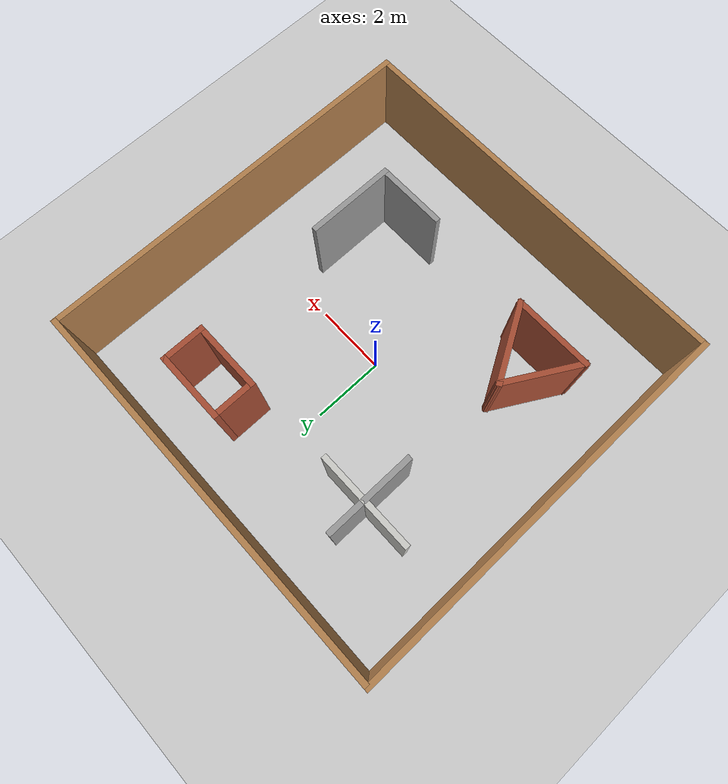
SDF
<sdf version="1.7">
 <world name="default">
  <light name="sun" type="directional">
   <pose>0 0 10 0 -0 0</pose>
   <diffuse>0.8 0.8 0.8 1</diffuse>
   <specular>0.2 0.2 0.2 1</specular>
   <attenuation>
    <range>1000</range>
    <constant>0.9</constant>
    <linear>0.01</linear>
    <quadratic>0.001</quadratic>
   </attenuation>
   <direction>-0.5 0.1 -0.9</direction>
   <spot><inner_angle>0</inner_angle><outer_angle>0</outer_angle><falloff>0</falloff></spot>
  </light>
  <model name="ground_plane">
   <static>1</static>
   <link name="link">
    <collision name="collision">
     <geometry><plane><normal>0 0 1</normal><size>100 100</size></plane></geometry>
     <surface>
      <contact><collide_bitmask>65535</collide_bitmask></contact>
      <friction><ode><mu>100</mu><mu2>50</mu2></ode></friction>
     </surface>
    </collision>
    <visual name="visual">
     <cast_shadows>0</cast_shadows>
     <geometry><plane><normal>0 0 1</normal><size>100 100</size></plane></geometry>
     <material>
      <script><uri>file://media/materials/scripts/gazebo.material</uri><name>Gazebo/Grey</name></script>
     </material>
    </visual>
   </link>
  </model>
  <gravity>0 0 -9.8</gravity>
  <magnetic_field>6e-06 2.3e-05 -4.2e-05</magnetic_field>
  <atmosphere type="adiabatic"/>
  <physics type="ode">
   <max_step_size>0.001</max_step_size>
   <real_time_factor>1</real_time_factor>
   <real_time_update_rate>1000</real_time_update_rate>
  </physics>
  <scene><ambient>0.4 0.4 0.4 1</ambient><background>0.7 0.7 0.7 1</background><shadows>1</shadows></scene>
  <audio><device>default</device></audio>
  <spherical_coordinates>
   <surface_model>EARTH_WGS84</surface_model>
   <latitude_deg>0</latitude_deg>
   <longitude_deg>0</longitude_deg>
   <elevation>0</elevation>
   <heading_deg>0</heading_deg>
  </spherical_coordinates>
  <model name="play_ground2">
   <pose>-0.008205 -0.078649 0 0 -0 0</pose>
   <link name="Wall_14">
    <collision name="Wall_14_Collision">
     <geometry><box><size>2 0.15 2.5</size></box></geometry>
     <pose>0 0 1.25 0 -0 0</pose>
    </collision>
    <visual name="Wall_14_Visual">
     <pose>0 0 1.25 0 -0 0</pose>
     <geometry><box><size>2 0.15 2.5</size></box></geometry>
     <material>
      <script><uri>file://media/materials/scripts/gazebo.material</uri><name>Gazebo/Grey</name></script>
      <ambient>1 1 1 1</ambient>
     </material>
     <meta><layer>0</layer></meta>
    </visual>
    <pose>2.1479 -3.11007 0 0 -0 3.14159</pose>
   </link>
   <link name="Wall_16">
    <collision name="Wall_16_Collision">
     <geometry><box><size>2.5 0.15 2.5</size></box></geometry>
     <pose>0 0 1.25 0 -0 0</pose>
    </collision>
    <visual name="Wall_16_Visual">
     <pose>0 0 1.25 0 -0 0</pose>
     <geometry><box><size>2.5 0.15 2.5</size></box></geometry>
     <material>
      <script><uri>file://media/materials/scripts/gazebo.material</uri><name>Gazebo/Grey</name></script>
      <ambient>1 1 1 1</ambient>
     </material>
     <meta><layer>0</layer></meta>
    </visual>
    <pose>3.0729 -1.93507 0 0 -0 1.5708</pose>
   </link>
   <link name="Wall_18">
    <collision name="Wall_18_Collision">
     <geometry><box><size>2.5 0.15 2.5</size></box></geometry>
     <pose>0 0 1.25 0 -0 0</pose>
    </collision>
    <visual name="Wall_18_Visual">
     <pose>0 0 1.25 0 -0 0</pose>
     <geometry><box><size>2.5 0.15 2.5</size></box></geometry>
     <material>
      <script><uri>file://media/materials/scripts/gazebo.material</uri><name>Gazebo/Grey</name></script>
      <ambient>1 1 1 1</ambient>
     </material>
     <meta><layer>0</layer></meta>
    </visual>
    <pose>-2.64618 2.7406 0 0 -0 -1.5708</pose>
   </link>
   <link name="Wall_2">
    <collision name="Wall_2_Collision">
     <geometry><box><size>11 0.15 2.5</size></box></geometry>
     <pose>0 0 1.25 0 -0 0</pose>
    </collision>
    <visual name="Wall_2_Visual">
     <pose>0 0 1.25 0 -0 0</pose>
     <geometry><box><size>11 0.15 2.5</size></box></geometry>
     <material>
      <script><uri>file://media/materials/scripts/gazebo.material</uri><name>Gazebo/Wood</name></script>
      <ambient>1 1 1 1</ambient>
     </material>
     <meta><layer>0</layer></meta>
    </visual>
    <pose>-5.475 -0 0 0 -0 -1.5708</pose>
   </link>
   <link name="Wall_20">
    <collision name="Wall_20_Collision">
     <geometry><box><size>2.75 0.15 2.5</size></box></geometry>
     <pose>0 0 1.25 0 -0 0</pose>
    </collision>
    <visual name="Wall_20_Visual">
     <pose>0 0 1.25 0 -0 0</pose>
     <geometry><box><size>2.75 0.15 2.5</size></box></geometry>
     <material>
      <script><uri>file://media/materials/scripts/gazebo.material</uri><name>Gazebo/CeilingTiled</name></script>
      <ambient>1 1 1 1</ambient>
     </material>
     <meta><layer>0</layer></meta>
    </visual>
    <pose>-2.66462 2.90324 0 0 -0 0</pose>
   </link>
   <link name="Wall_22">
    <collision name="Wall_22_Collision">
     <geometry><box><size>2.25 0.15 2.5</size></box></geometry>
     <pose>0 0 1.25 0 -0 0</pose>
    </collision>
    <visual name="Wall_22_Visual">
     <pose>0 0 1.25 0 -0 0</pose>
     <geometry><box><size>2.25 0.15 2.5</size></box></geometry>
     <material>
      <script><uri>file://media/materials/scripts/gazebo.material</uri><name>Gazebo/Bricks</name></script>
      <ambient>1 1 1 1</ambient>
     </material>
     <meta><layer>0</layer></meta>
    </visual>
    <pose>-2.8221 -3.0182 0 0 -0 0</pose>
   </link>
   <link name="Wall_23">
    <collision name="Wall_23_Collision">
     <geometry><box><size>2.25 0.15 2.5</size></box></geometry>
     <pose>0 0 1.25 0 -0 0</pose>
    </collision>
    <visual name="Wall_23_Visual">
     <pose>0 0 1.25 0 -0 0</pose>
     <geometry><box><size>2.25 0.15 2.5</size></box></geometry>
     <material>
      <script><uri>file://media/materials/scripts/gazebo.material</uri><name>Gazebo/Bricks</name></script>
      <ambient>1 1 1 1</ambient>
     </material>
     <meta><layer>0</layer></meta>
    </visual>
    <pose>-2.2971 -2.10887 0 0 -0 2.0944</pose>
   </link>
   <link name="Wall_24">
    <collision name="Wall_24_Collision">
     <geometry><box><size>2.25 0.15 2.5</size></box></geometry>
     <pose>0 0 1.25 0 -0 0</pose>
    </collision>
    <visual name="Wall_24_Visual">
     <pose>0 0 1.25 0 -0 0</pose>
     <geometry><box><size>2.25 0.15 2.5</size></box></geometry>
     <material>
      <script><uri>file://media/materials/scripts/gazebo.material</uri><name>Gazebo/Bricks</name></script>
      <ambient>1 1 1 1</ambient>
     </material>
     <meta><layer>0</layer></meta>
    </visual>
    <pose>-3.3471 -2.10887 0 0 -0 -2.0944</pose>
   </link>
   <link name="Wall_26">
    <collision name="Wall_26_Collision">
     <geometry><box><size>2 0.15 2.5</size></box></geometry>
     <pose>0 0 1.25 0 -0 0</pose>
    </collision>
    <visual name="Wall_26_Visual">
     <pose>0 0 1.25 0 -0 0</pose>
     <geometry><box><size>2 0.15 2.5</size></box></geometry>
     <material>
      <script><uri>file://media/materials/scripts/gazebo.material</uri><name>Gazebo/Bricks</name></script>
      <ambient>1 1 1 1</ambient>
     </material>
     <meta><layer>0</layer></meta>
    </visual>
    <pose>2.02598 2.99576 0 0 -0 0</pose>
   </link>
   <link name="Wall_27">
    <collision name="Wall_27_Collision">
     <geometry><box><size>1.25 0.15 2.5</size></box></geometry>
     <pose>0 0 1.25 0 -0 0</pose>
    </collision>
    <visual name="Wall_27_Visual">
     <pose>0 0 1.25 0 -0 0</pose>
     <geometry><box><size>1.25 0.15 2.5</size></box></geometry>
     <material>
      <script><uri>file://media/materials/scripts/gazebo.material</uri><name>Gazebo/Bricks</name></script>
      <ambient>1 1 1 1</ambient>
     </material>
     <meta><layer>0</layer></meta>
    </visual>
    <pose>2.95098 3.54576 0 0 -0 1.5708</pose>
   </link>
   <link name="Wall_28">
    <collision name="Wall_28_Collision">
     <geometry><box><size>2 0.15 2.5</size></box></geometry>
     <pose>0 0 1.25 0 -0 0</pose>
    </collision>
    <visual name="Wall_28_Visual">
     <pose>0 0 1.25 0 -0 0</pose>
     <geometry><box><size>2 0.15 2.5</size></box></geometry>
     <material>
      <script><uri>file://media/materials/scripts/gazebo.material</uri><name>Gazebo/Bricks</name></script>
      <ambient>1 1 1 1</ambient>
     </material>
     <meta><layer>0</layer></meta>
    </visual>
    <pose>2.02598 4.09576 0 0 -0 3.14159</pose>
   </link>
   <link name="Wall_29">
    <collision name="Wall_29_Collision">
     <geometry><box><size>1.25 0.15 2.5</size></box></geometry>
     <pose>0 0 1.25 0 -0 0</pose>
    </collision>
    <visual name="Wall_29_Visual">
     <pose>0 0 1.25 0 -0 0</pose>
     <geometry><box><size>1.25 0.15 2.5</size></box></geometry>
     <material>
      <script><uri>file://media/materials/scripts/gazebo.material</uri><name>Gazebo/Bricks</name></script>
      <ambient>1 1 1 1</ambient>
     </material>
     <meta><layer>0</layer></meta>
    </visual>
    <pose>1.10098 3.54576 0 0 -0 -1.5708</pose>
   </link>
   <link name="Wall_5">
    <collision name="Wall_5_Collision">
     <geometry><box><size>11 0.15 2.5</size></box></geometry>
     <pose>0 0 1.25 0 -0 0</pose>
    </collision>
    <visual name="Wall_5_Visual">
     <pose>0 0 1.25 0 -0 0</pose>
     <geometry><box><size>11 0.15 2.5</size></box></geometry>
     <material>
      <script><uri>file://media/materials/scripts/gazebo.material</uri><name>Gazebo/Wood</name></script>
      <ambient>1 1 1 1</ambient>
     </material>
     <meta><layer>0</layer></meta>
    </visual>
    <pose>0.05 -5.425 0 0 -0 0</pose>
   </link>
   <link name="Wall_7">
    <collision name="Wall_7_Collision">
     <geometry><box><size>11 0.15 2.5</size></box></geometry>
     <pose>0 0 1.25 0 -0 0</pose>
    </collision>
    <visual name="Wall_7_Visual">
     <pose>0 0 1.25 0 -0 0</pose>
     <geometry><box><size>11 0.15 2.5</size></box></geometry>
     <material>
      <script><uri>file://media/materials/scripts/gazebo.material</uri><name>Gazebo/Wood</name></script>
      <ambient>1 1 1 1</ambient>
     </material>
     <meta><layer>0</layer></meta>
    </visual>
    <pose>5.475 -0 0 0 -0 1.5708</pose>
   </link>
   <link name="Wall_8">
    <collision name="Wall_8_Collision">
     <geometry><box><size>11 0.15 2.5</size></box></geometry>
     <pose>0 0 1.25 0 -0 0</pose>
    </collision>
    <visual name="Wall_8_Visual">
     <pose>0 0 1.25 0 -0 0</pose>
     <geometry><box><size>11 0.15 2.5</size></box></geometry>
     <material>
      <script><uri>file://media/materials/scripts/gazebo.material</uri><name>Gazebo/Wood</name></script>
      <ambient>1 1 1 1</ambient>
     </material>
     <meta><layer>0</layer></meta>
    </visual>
    <pose>0.05 5.425 0 0 -0 3.14159</pose>
   </link>
   <static>1</static>
  </model>
 </world>
</sdf>
